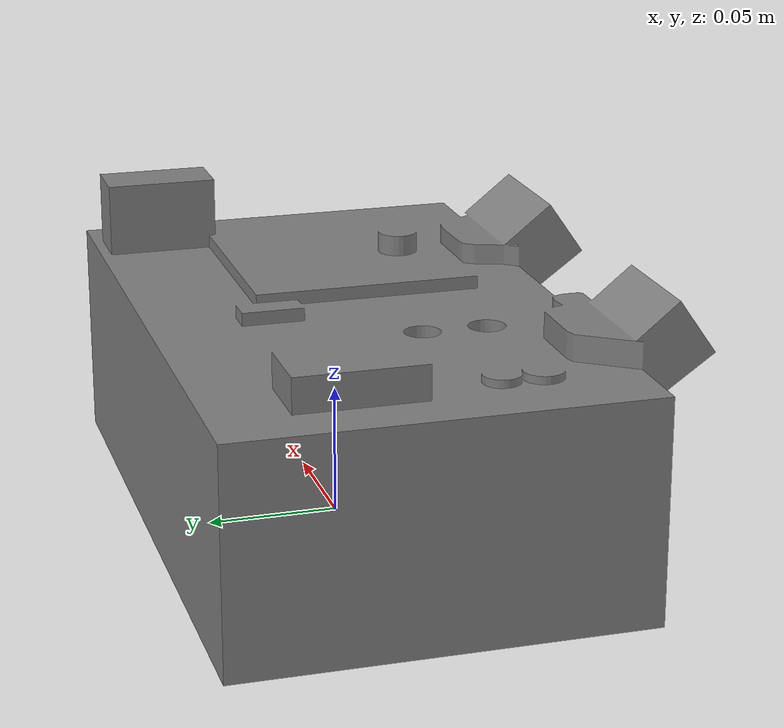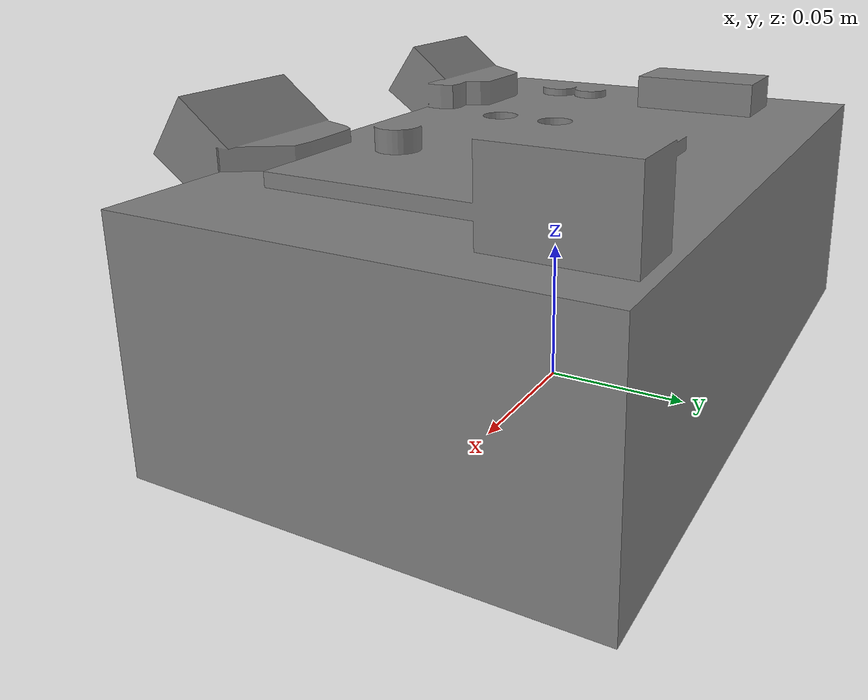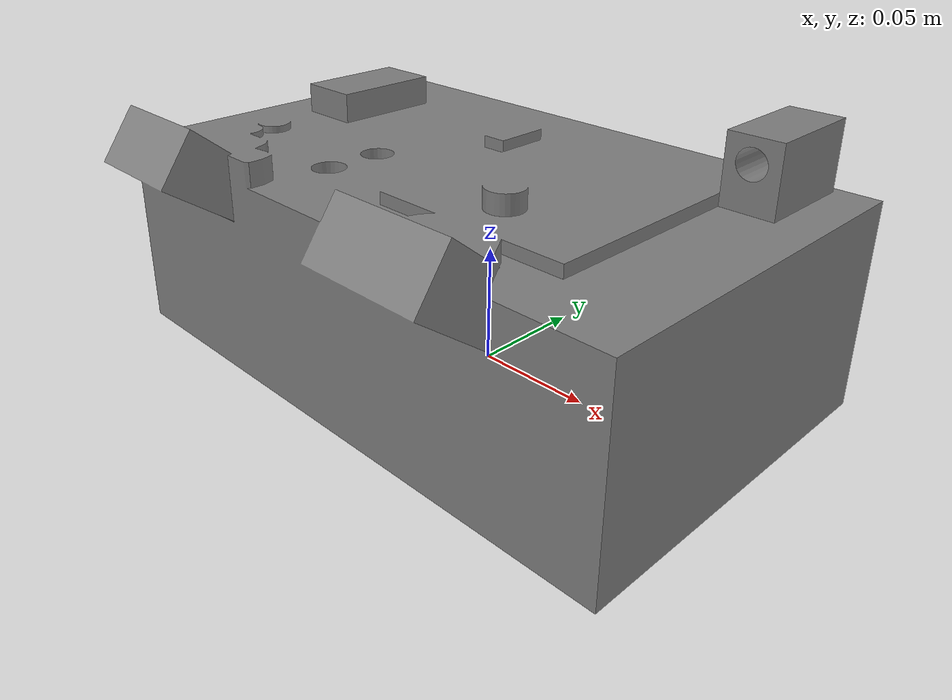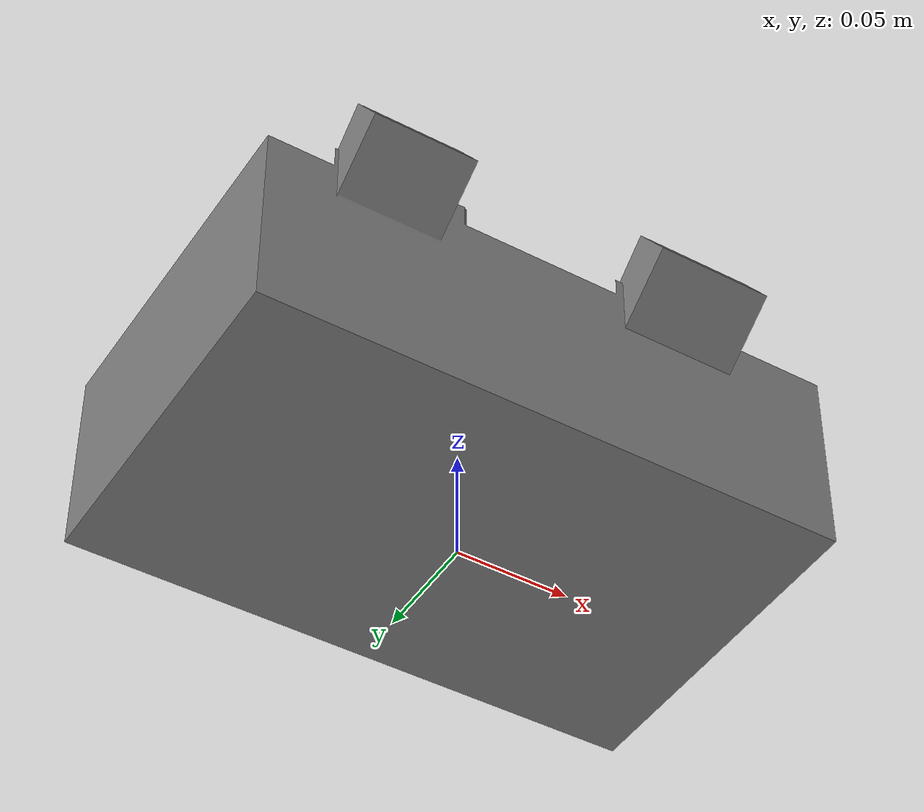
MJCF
<mujoco model="iros_competition_box">
    <compiler angle="radian" meshdir="environment_parts/"/>
          <!-- Define the assets -->
    <asset>
        <mesh name="box" file="iros_competition_box/assets/box_v4.obj" />

        <mesh name="col1" file="iros_competition_box/assets/col/col1.obj" />
        <mesh name="col2" file="iros_competition_box/assets/col/col2.obj" />
        <mesh name="col3" file="iros_competition_box/assets/col/col3.obj" />
        <mesh name="col5" file="iros_competition_box/assets/col/col5.obj" />
        <mesh name="col6" file="iros_competition_box/assets/col/col6.obj" />
        <mesh name="col7" file="iros_competition_box/assets/col/col7.obj" />
        <mesh name="col8" file="iros_competition_box/assets/col/col8.obj" />
        <mesh name="col10" file="iros_competition_box/assets/col/col10.obj" />
        <mesh name="col11" file="iros_competition_box/assets/col/col11.obj" />
        <mesh name="col12" file="iros_competition_box/assets/col/col12.obj" />

    </asset>

    <!-- Define the world body -->
    <worldbody>
        <!-- Load the hammer mesh and place it at the origin -->
        <body name="iros_box" pos="0 0 0">
            <geom name="iros_box" type="mesh" mesh="box" group="0" contype="0" conaffinity="0"/>

            <geom name="col1" type="mesh" mesh="col1" group="3" contype="1" conaffinity="1"/>
            <geom name="col2" type="mesh" mesh="col2" group="3" contype="1" conaffinity="1"/>
            <geom name="col3" type="mesh" mesh="col3" group="3" contype="1" conaffinity="1"/>
            <geom name="col5" type="mesh" mesh="col5" group="3" contype="1" conaffinity="1"/>
            <geom name="col6" type="mesh" mesh="col6" group="3" contype="1" conaffinity="1"/>
            <geom name="col7" type="mesh" mesh="col7" group="3" contype="1" conaffinity="1"/>
            <geom name="col8" type="mesh" mesh="col8" group="3" contype="1" conaffinity="1"/>
            <geom name="col10" type="mesh" mesh="col10" group="3" contype="1" conaffinity="1"/>
            <geom name="col11" type="mesh" mesh="col11" group="3" contype="1" conaffinity="1"/>
            <geom name="col12" type="mesh" mesh="col12" group="3" contype="1" conaffinity="1"/>

        </body>
    </worldbody>
</mujoco>
